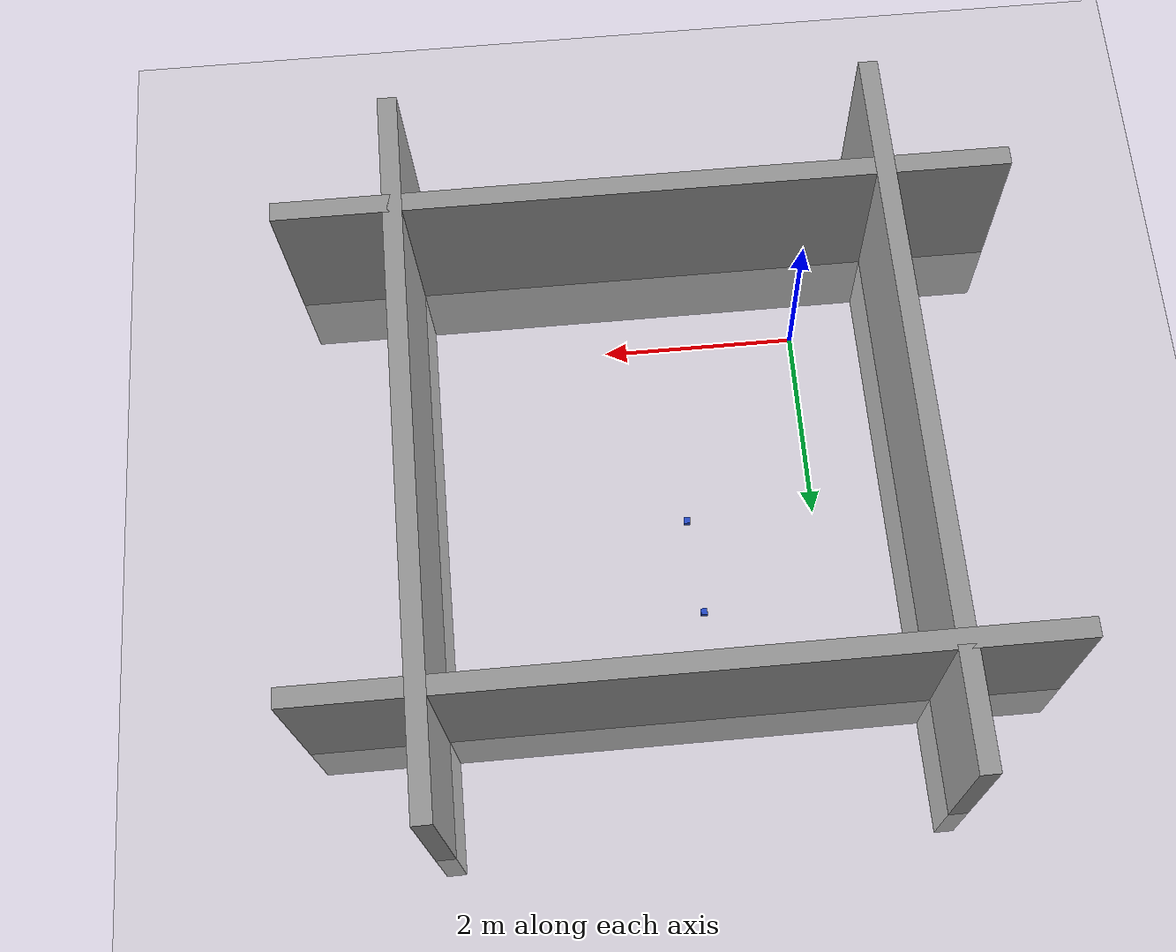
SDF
<sdf version="1.4">
 <world name="default">
  <light name="sun" type="directional">
   <pose>0 0 10 0 -0 0</pose>
   <diffuse>0.8 0.8 0.8 1</diffuse>
   <specular>0.2 0.2 0.2 1</specular>
   <attenuation>
    <range>1000</range>
    <constant>0.9</constant>
    <linear>0.01</linear>
    <quadratic>0.001</quadratic>
   </attenuation>
   <direction>-0.5 0.1 -0.9</direction>
  </light>
  <model name="ground_plane">
   <static>1</static>
   <link name="link">
    <collision name="collision">
     <geometry><plane><normal>0 0 1</normal><size>100 100</size></plane></geometry>
     <surface><friction><ode><mu>100</mu><mu2>50</mu2></ode></friction></surface>
    </collision>
    <visual name="visual">
     <cast_shadows>0</cast_shadows>
     <geometry><plane><normal>0 0 1</normal><size>100 100</size></plane></geometry>
     <material>
      <script><uri>file://media/materials/scripts/gazebo.material</uri><name>Gazebo/Grey</name></script>
     </material>
    </visual>
    <velocity_decay><linear>0</linear><angular>0</angular></velocity_decay>
   </link>
  </model>
  <physics type="ode">
   <max_step_size>0.001</max_step_size>
   <real_time_factor>1</real_time_factor>
   <real_time_update_rate>1000</real_time_update_rate>
   <gravity>0 0 -9.8</gravity>
  </physics>
  <scene><ambient>0.4 0.4 0.4 1</ambient><background>0.7 0.7 0.7 1</background><shadows>1</shadows></scene>
  <spherical_coordinates>
   <surface_model>EARTH_WGS84</surface_model>
   <latitude_deg>0</latitude_deg>
   <longitude_deg>0</longitude_deg>
   <elevation>0</elevation>
   <heading_deg>0</heading_deg>
  </spherical_coordinates>
  <model name="wall1">
   <static>1</static>
   <link name="link">
    <pose>0 0 0.42 0 -0 0</pose>
    <collision name="collision"><geometry><box><size>7.5 0.2 2.8</size></box></geometry></collision>
    <visual name="visual">
     <cast_shadows>0</cast_shadows>
     <geometry><box><size>7.5 0.2 2.8</size></box></geometry>
     <material>
      <script>
       <uri>model://grey_wall/materials/scripts</uri>
       <uri>model://grey_wall/materials/textures</uri>
       <name>vrc/grey_wall</name>
      </script>
     </material>
    </visual>
   </link>
   <pose>-1 1.5 0 0 -0 -1.55905</pose>
  </model>
  <model name="wall2">
   <static>1</static>
   <link name="link">
    <pose>0 0 0.42 0 -0 0</pose>
    <collision name="collision"><geometry><box><size>7.5 0.2 2.8</size></box></geometry></collision>
    <visual name="visual">
     <cast_shadows>0</cast_shadows>
     <geometry><box><size>7.5 0.2 2.8</size></box></geometry>
     <material>
      <script>
       <uri>model://grey_wall/materials/scripts</uri>
       <uri>model://grey_wall/materials/textures</uri>
       <name>vrc/grey_wall</name>
      </script>
     </material>
    </visual>
   </link>
   <pose>1.5 4.0 0 0 -0 0</pose>
  </model>
  <model name="wall3">
   <static>1</static>
   <link name="link">
    <pose>0 0 0.42 0 -0 0</pose>
    <collision name="collision"><geometry><box><size>7.5 0.2 2.8</size></box></geometry></collision>
    <visual name="visual">
     <cast_shadows>0</cast_shadows>
     <geometry><box><size>7.5 0.2 2.8</size></box></geometry>
     <material>
      <script>
       <uri>model://grey_wall/materials/scripts</uri>
       <uri>model://grey_wall/materials/textures</uri>
       <name>vrc/grey_wall</name>
      </script>
     </material>
    </visual>
   </link>
   <pose>4.0 1.5 0 0 -0 -1.55905</pose>
  </model>
  <model name="wall4">
   <static>1</static>
   <link name="link">
    <pose>0 0 0.42 0 -0 0</pose>
    <collision name="collision"><geometry><box><size>7.5 0.2 2.8</size></box></geometry></collision>
    <visual name="visual">
     <cast_shadows>0</cast_shadows>
     <geometry><box><size>7.5 0.2 2.8</size></box></geometry>
     <material>
      <script>
       <uri>model://grey_wall/materials/scripts</uri>
       <uri>model://grey_wall/materials/textures</uri>
       <name>vrc/grey_wall</name>
      </script>
     </material>
    </visual>
   </link>
   <pose>1.5 -1 0 0 -0 0</pose>
  </model>
  <model name="cube_1">
   <static>0</static>
   <link name="link">
    <inertial>
     <mass>0.05</mass>
     <inertia><ixx>0.001</ixx><ixy>0</ixy><ixz>0</ixz><iyy>0.001</iyy><iyz>0</iyz><izz>0.001</izz></inertia>
    </inertial>
    <collision name="collision">
     <geometry><box><size>0.063462 0.063462 0.063462</size></box></geometry>
     <surface>
      <friction><ode><mu>30</mu><mu2>30</mu2></ode></friction>
      <contact><ode><kp>1e+06</kp><kd>100</kd><max_vel>1</max_vel><min_depth>0.002</min_depth></ode></contact>
     </surface>
    </collision>
    <visual name="visual">
     <geometry><box><size>0.063462 0.063462 0.063462</size></box></geometry>
     <material>
      <script><uri>file://media/materials/scripts/gazebo.material</uri><name>Gazebo/Blue</name></script>
     </material>
    </visual>
    <velocity_decay><linear>0</linear><angular>0</angular></velocity_decay>
   </link>
   <pose>1.23 3.0 0.029231 0 0 0</pose>
  </model>
  <model name="cube_2">
   <static>0</static>
   <link name="link">
    <inertial>
     <mass>0.05</mass>
     <inertia><ixx>0.001</ixx><ixy>0</ixy><ixz>0</ixz><iyy>0.001</iyy><iyz>0</iyz><izz>0.001</izz></inertia>
    </inertial>
    <collision name="collision">
     <geometry><box><size>0.063462 0.063462 0.063462</size></box></geometry>
     <surface>
      <friction><ode><mu>30</mu><mu2>30</mu2></ode></friction>
      <contact><ode><kp>1e+06</kp><kd>100</kd><max_vel>1</max_vel><min_depth>0.002</min_depth></ode></contact>
     </surface>
    </collision>
    <visual name="visual">
     <geometry><box><size>0.063462 0.063462 0.063462</size></box></geometry>
     <material>
      <script><uri>file://media/materials/scripts/gazebo.material</uri><name>Gazebo/Blue</name></script>
     </material>
    </visual>
    <velocity_decay><linear>0</linear><angular>0</angular></velocity_decay>
   </link>
   <pose>1.31 2.0 0.029231 0 0 0</pose>
  </model>
 </world>
</sdf>
